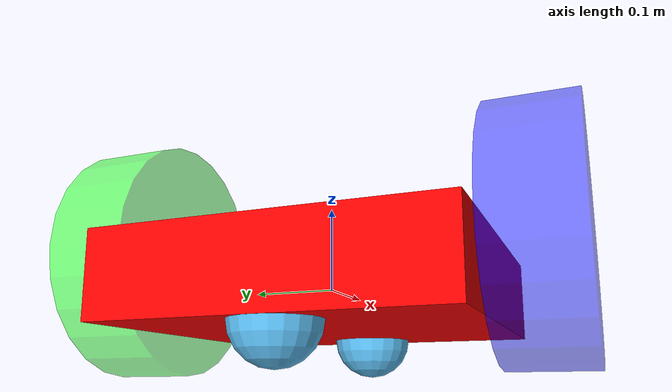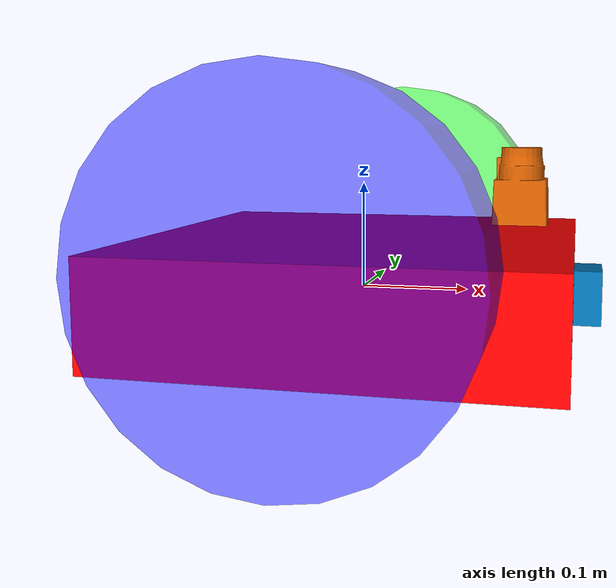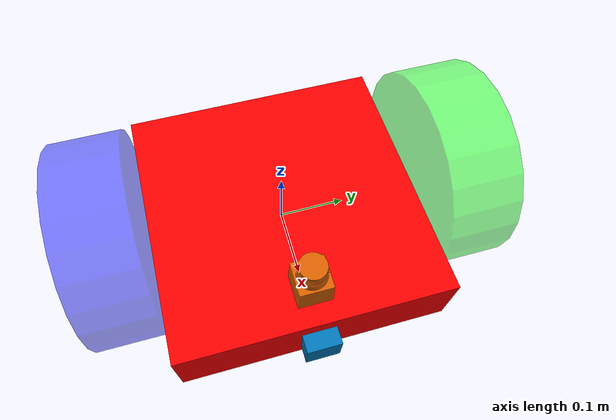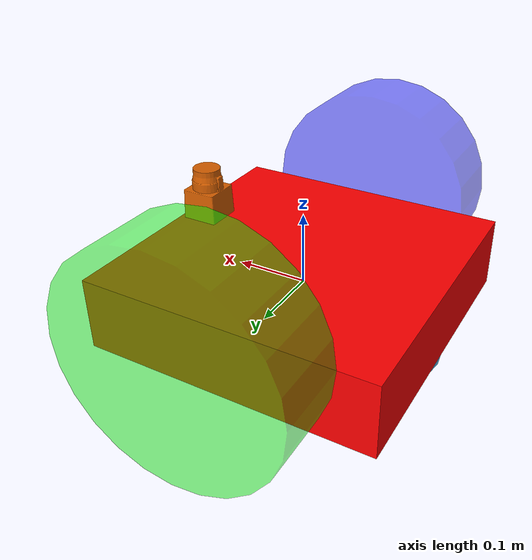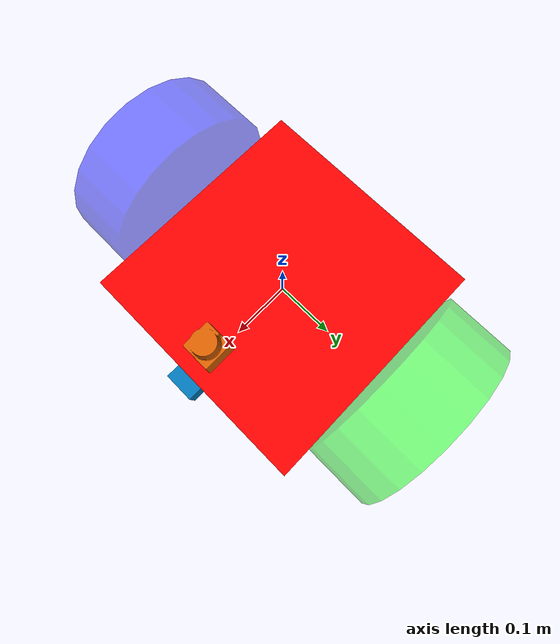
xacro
<robot name="my_robot" xmlns:xacro="http://www.ros.org/wiki/xacro">
  <xacro:include filename="$(find my_robot)/urdf/my_robot.gazebo" />
  <link name="robot_footprint"></link>

  <joint name="robot_footprint_joint" type="fixed">
    <origin xyz="0 0 0" rpy="0 0 0" />
    <parent link="robot_footprint"/>
    <child link="chassis" />
  </joint>

  <link name='chassis'>
    <pose>0 0 0.1 0 0 0</pose>

    <inertial>
      <mass value="15.0"/>
      <origin xyz="0.0 0 0" rpy=" 0 0 0"/>
      <inertia
          ixx="0.1" ixy="0" ixz="0"
          iyy="0.1" iyz="0"
          izz="0.1"
      />
    </inertial>

    <collision name='collision'>
      <origin xyz="0 0 0" rpy=" 0 0 0"/>
      <geometry>
        <box size=".4 .4 .1"/>
      </geometry>
    </collision>

    <visual name='chassis_visual'>
      <origin xyz="0 0 0" rpy=" 0 0 0"/>
      <geometry>
        <box size=".4 .4 .1"/>
      </geometry>
      <material name="my_material">
        <color rgba="1 0 0 1"/> <!-- Red color -->
      </material>
    </visual>

    <collision name='back_caster_collision'>
      <origin xyz="-0.15 0 -0.05" rpy=" 0 0 0"/>
      <geometry>
        <sphere radius="0.0499"/>
      </geometry>
    </collision>

    <visual name='back_caster_visual'>
      <origin xyz="-0.15 0 -0.05" rpy=" 0 0 0"/>
      <geometry>
        <sphere radius="0.05"/>
      </geometry>
    </visual>

    <collision name='front_caster_collision'>
      <origin xyz="0.15 0 -0.05" rpy=" 0 0 0"/>
      <geometry>
        <sphere radius="0.0499"/>
      </geometry>
    </collision>

    <visual name='front_caster_visual'>
      <origin xyz="0.15 0 -0.05" rpy=" 0 0 0"/>
      <geometry>
        <sphere radius="0.05"/>
      </geometry>
    </visual>

  </link>

  <link name='left_wheel'>
    <inertial>
      <mass value ="5"/>
      <origin xyz="0.0 0 0" rpy=" 0 1.5707 1.5707"/>
      <inertia
          ixx="0.1" ixy="0" ixz="0"
          iyy="0.1" iyz="0"
          izz="0.1"
      />
    </inertial>

    <collision name='collision'>
      <origin xyz="0.0 0 0" rpy=" 0 1.5707 1.5707"/>
      <geometry>
        <cylinder length="0.1" radius="0.15"/>
      </geometry>
    </collision>

    <visual name='left_wheel_visual'>
      <origin xyz="0.0 0 0" rpy=" 0 1.5707 1.5707"/>
      <geometry>
        <cylinder length="0.1" radius="0.15"/>
      </geometry>
      <material name="my_material_0">
        <color rgba="0 1 0 0.5"/> <!-- Green translucent color -->
      </material>
    </visual>
  </link>

  <link name='right_wheel'>
    <inertial>
      <mass value ="5"/>
      <origin xyz="0.0 0 0" rpy=" 0 1.5707 1.5707"/>
      <inertia
          ixx="0.1" ixy="0" ixz="0"
          iyy="0.1" iyz="0"
          izz="0.1"
      />
    </inertial>

    <collision name='collision'>
      <origin xyz="0.0 0 0" rpy=" 0 1.5707 1.5707"/>
      <geometry>
        <cylinder length="0.1" radius="0.15"/>
      </geometry>
    </collision>

    <visual name='right_wheel_visual'>
      <origin xyz="0.0 0 0" rpy=" 0 1.5707 1.5707"/>
      <geometry>
        <cylinder length="0.1" radius="0.15"/>
      </geometry>
      <material name="my_material_1">
        <color rgba="0 0 1 0.5"/> <!-- Blue translucent color -->
      </material>
    </visual>
  </link>

  <joint type="continuous" name="left_wheel_hinge">
    <origin xyz="0.0 0.25 0.05" rpy="0 0 0"/>
    <child link="left_wheel"/>
    <parent link="chassis"/>
    <axis xyz="0 1 0" rpy="0 0 0"/>
    <limit effort="10000" velocity="1000"/>
    <dynamics damping="1.0" friction="1.0"/>
  </joint>

  <joint type="continuous" name="right_wheel_hinge">
    <origin xyz="0.0 -0.25 0.05" rpy="0 0 0"/>
    <child link="right_wheel"/>
    <parent link="chassis"/>
    <axis xyz="0 1 0" rpy="0 0 0"/>
    <limit effort="10000" velocity="1000"/>
    <dynamics damping="1.0" friction="1.0"/>
  </joint>

  <link name="camera">
    <inertial>
      <mass value ="0.1"/>
      <origin xyz="0.0 0 0" rpy=" 0 0 0"/>
      <inertia
          ixx="1e-6" ixy="0" ixz="0"
          iyy="1e-6" iyz="0"
          izz="1e-6"
      />
    </inertial>

    <collision name='camera_collision'>
      <origin xyz="0.0 0 0" rpy=" 0 0 0"/>
      <geometry>
        <box size="0.05 0.05 0.05"/>
      </geometry>
    </collision>

    <visual name='camera_viz'>
      <origin xyz="0.0 0 0" rpy=" 0 0 0"/>
      <geometry>
        <box size="0.05 0.05 0.05"/>
      </geometry>
    </visual>
  </link>

  <joint type="fixed" name="camera_joint">
    <origin xyz="0.2 0 0" rpy="0 0 0"/>
    <child link="camera"/>
    <parent link="chassis"/>
    <axis xyz="0 1 0" rpy="0 0 0"/>
  </joint>

  <link name="hokuyo">
    <inertial>
      <mass value ="1e-5"/>
      <origin xyz="0.0 0 0" rpy=" 0 0 0"/>
      <inertia
          ixx="1e-6" ixy="0" ixz="0"
          iyy="1e-6" iyz="0"
          izz="1e-6"
      />
    </inertial>

    <collision name='hokuyo_collision'>
      <origin xyz="0.0 0 0" rpy=" 0 0 0"/>
      <geometry>
        <mesh filename="package://my_robot/meshes/hokuyo.dae"/>
      </geometry>
    </collision>

    <visual name='hokuyo_viz'>
      <origin xyz="0.0 0 0" rpy=" 0 0 0"/>
      <geometry>
        <mesh filename="package://my_robot/meshes/hokuyo.dae"/>
      </geometry>
    </visual>
  </link>

  <joint type="fixed" name="hokuyo_joint">
    <origin xyz="0.15 0 0.1" rpy="0 0 0"/>
    <child link="hokuyo"/>
    <parent link="chassis"/>
    <axis xyz="0 1 0" rpy="0 0 0"/>
  </joint>

</robot>
